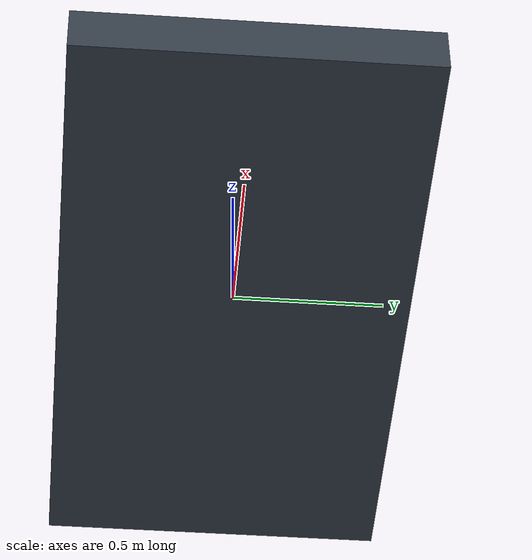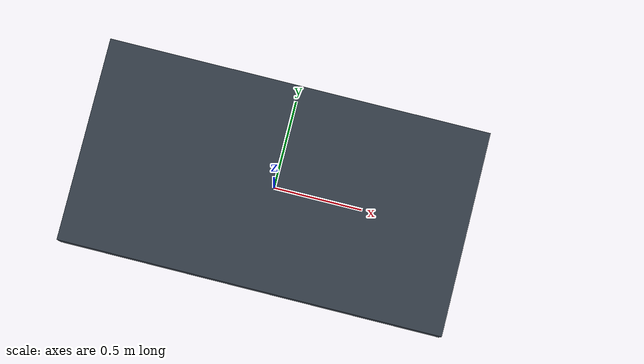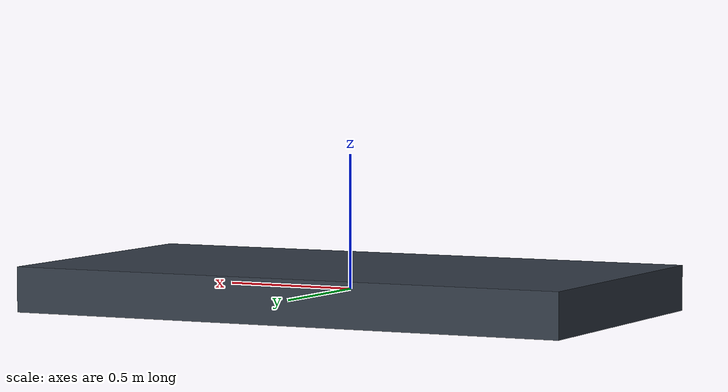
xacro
<?xml version="1.0" encoding="UTF-8"?>
<robot name="vehicle" xmlns:xacro="http://www.ros.org/wiki/xacro">

<xacro:include filename="$(find vehicle_1_description)/urdf/material.xacro"/>
<xacro:include filename="$(find vehicle_1_description)/urdf/gazebo.xacro"/>

<!-- Dummy -->
<link name="dummy_link"/>

<!-- Chassis -->
<link name="base_link">
  <inertial>
    <origin xyz="0 0 0" rpy="0 0 0"/>
    <mass value="130"/>
    <inertia ixx="15" ixy="0" ixz="0" iyy="52" iyz="0" izz="66"/>
  </inertial>
  <visual>
    <origin xyz="0 0 0" rpy="0 0 0"/>
    <geometry>
      <box size="2.186 1.162 0.17"/>
    </geometry>
    <material name="blue"/>
  </visual>
  <collision>
    <origin xyz="0 0 0" rpy="0 0 0"/>
    <geometry>
      <box size="2.186 1.162 0.17"/>
    </geometry>
  </collision>
</link>

<gazebo reference="base_link">
  <kp value="1000000"/>
  <kd value="1"/>
  <mu1 value="10"/>
  <mu2 value="10"/>
  <visual>
    <material>
      <xacro:gmaterial color="blue"/>
    </material>
  </visual>
</gazebo>

<joint name="dummy_joint" type="fixed">
  <parent link="dummy_link"/>
  <child link="base_link"/>
</joint>

</robot>

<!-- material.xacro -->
<robot>

<material name="black">
  <color rgba="0.0 0.0 0.0 1.0"/>
</material>
<material name="blue">
  <color rgba="0.203125 0.23828125 0.28515625 1.0"/>
</material>
<material name="green">
  <color rgba="0.0 0.8 0.0 1.0"/>
</material>
<material name="grey">
  <color rgba="0.2 0.2 0.2 1.0"/>
</material>
<material name="orange">
  <color rgba="1.0 0.423529411765 0.0392156862745 1.0"/>
</material>
<material name="brown">
  <color rgba="0.870588235294 0.811764705882 0.764705882353 1.0"/>
</material>
<material name="red">
  <color rgba="0.80078125 0.12890625 0.1328125 1.0"/>
</material>
<material name="white">
  <color rgba="1.0 1.0 1.0 1.0"/>
</material>

</robot>
